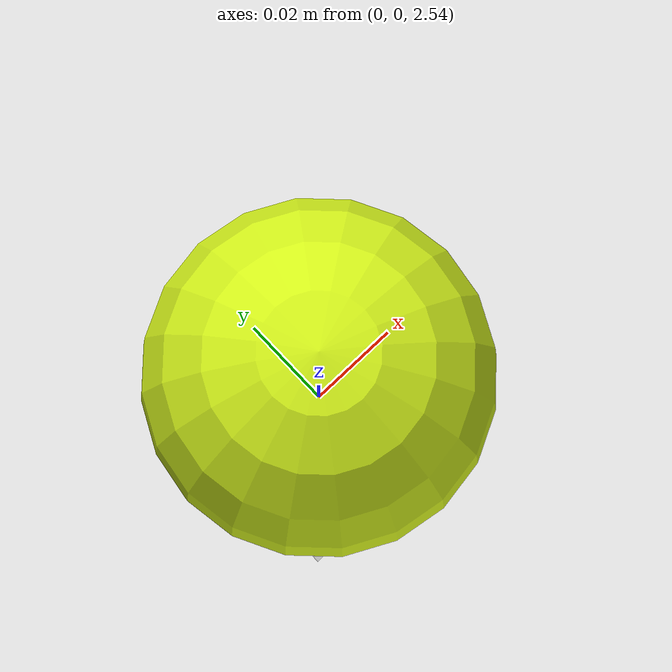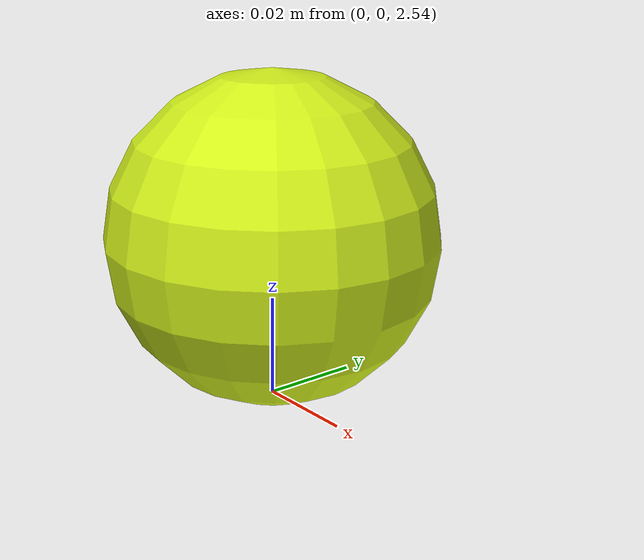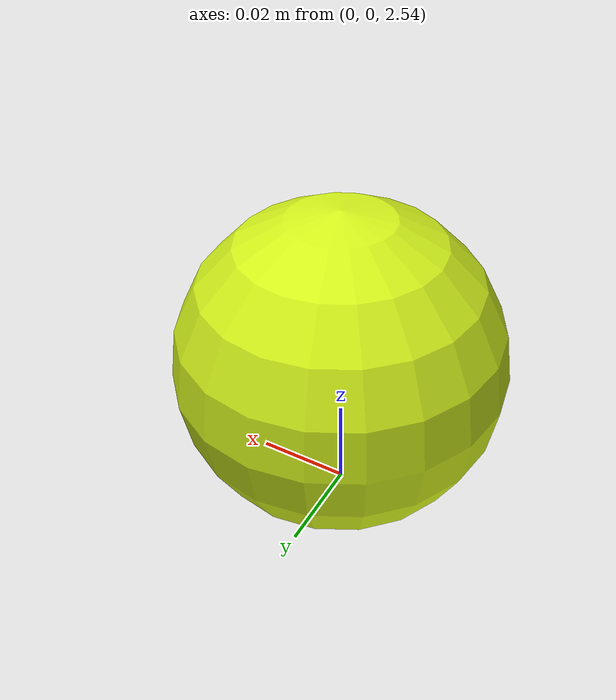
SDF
<?xml version="1.0"?>
<sdf version="1.11">
  <world name="tennis_ball_rebound_calibration">
    <physics name="dart_calibration" type="dart">
      <max_step_size>0.00025</max_step_size><real_time_factor>1</real_time_factor>
      <dart><collision_detector>ode</collision_detector><solver><solver_type>dantzig</solver_type></solver></dart>
    </physics>
    <plugin filename="gz-sim-physics-system" name="gz::sim::systems::Physics">
      <engine><filename>gz-physics-dartsim-plugin</filename></engine>
    </plugin>
    <plugin filename="gz-sim-user-commands-system" name="gz::sim::systems::UserCommands"/>
    <plugin filename="gz-sim-scene-broadcaster-system" name="gz::sim::systems::SceneBroadcaster"/>

    <gravity>0 0 -9.80665</gravity>
    <model name="calibration_ground">
      <static>true</static>
      <link name="ground_link">
        <collision name="ground_collision">
          <geometry><plane><normal>0 0 1</normal><size>4 4</size></plane></geometry>
          <surface><contact><category_bitmask>1</category_bitmask><collide_bitmask>1</collide_bitmask></contact></surface>
        </collision>
        <visual name="ground_visual"><geometry><plane><normal>0 0 1</normal><size>4 4</size></plane></geometry></visual>
      </link>
    </model>
    <!-- Bottom of the nominal 66 mm ball starts 2.54 m above the surface. -->
    <include><uri>model://tennis_ball_compliant</uri><name>calibration_ball</name><pose>0 0 2.573 0 0 0</pose></include>
  </world>
</sdf>

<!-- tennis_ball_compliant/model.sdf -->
<sdf version="1.11">
  <model name="tennis_ball_compliant">
    <pose>0 0 2.573 0 0 0</pose>
    <link name="ball_link">
      <inertial>
        <mass>0.058</mass>
        <!-- Thin-shell approximation I=2/3*m*r^2. -->
        <inertia><ixx>4.2108e-5</ixx><iyy>4.2108e-5</iyy><izz>4.2108e-5</izz></inertia>
      </inertial>
      <!-- Native collision remains only for cradle/unrelated category 0x0008.
           It cannot collide with analytical wheels (0x0002) or ground (0x0001). -->
      <collision name="cradle_only_collision">
        <geometry><sphere><radius>0.033</radius></sphere></geometry>
        <surface><contact><category_bitmask>4</category_bitmask><collide_bitmask>8</collide_bitmask></contact></surface>
      </collision>
      <visual name="ball_visual">
        <geometry><sphere><radius>0.033</radius></sphere></geometry>
        <material><ambient>0.75 0.88 0.08 1</ambient><diffuse>0.82 0.94 0.10 1</diffuse></material>
      </visual>
    </link>
    <plugin filename="tennis_ball_compliant_contact_system"
            name="tennis_ball_contact_system::TennisBallContactSystem">
      <ball_link>ball_link</ball_link>
      <left_wheel_link>flywheel_left_link</left_wheel_link>
      <right_wheel_link>flywheel_right_link</right_wheel_link>
      <ball_radius>0.033</ball_radius>
      <loading_exponent>1.5</loading_exponent>
      <unloading_exponent>1.9866353710127362</unloading_exponent>
      <loading_stiffness>107309.29404174259</loading_stiffness>
      <dynamic_damping>4692.375890562493</dynamic_damping>
      <maximum_compression>0.035</maximum_compression>
      <force_cap>5000.0</force_cap>
      <enable_ground>true</enable_ground><ground_height>0.0</ground_height>
      <telemetry_topic>/tennis_ball/compliant_contacts</telemetry_topic>
      <!-- friction_coefficient intentionally absent: physical launcher tyre
           friction calibration is pending, so no tangential force is invented. -->
    </plugin>
  </model>
</sdf>
